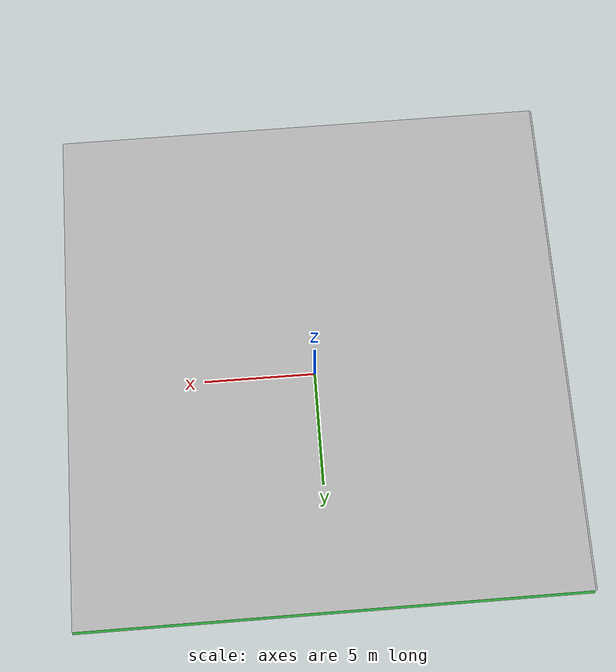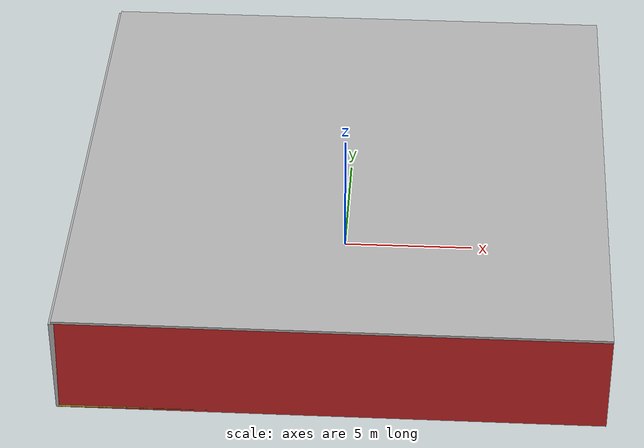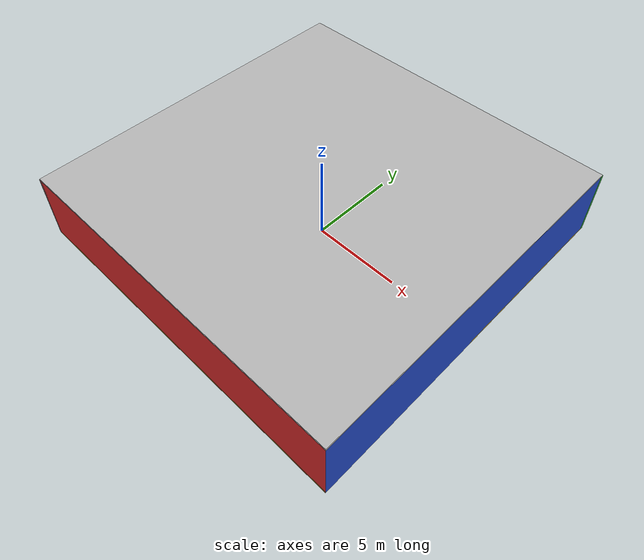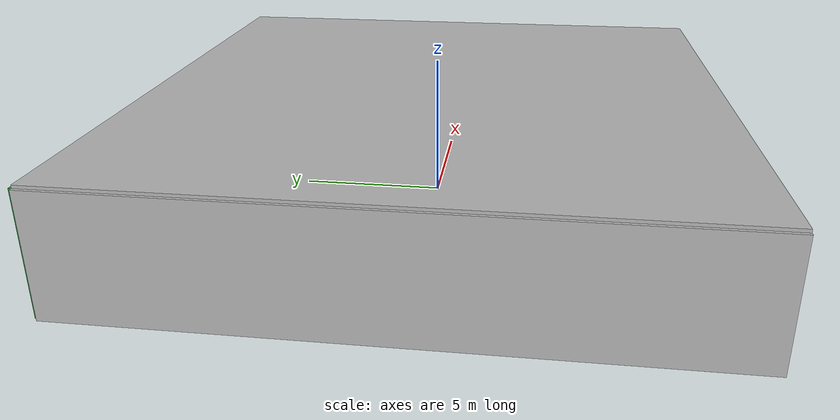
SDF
<sdf version="1.4">
 <world name="default">
  <physics type="ode">
   <max_step_size>0.001</max_step_size>
   <real_time_factor>1</real_time_factor>
   <real_time_update_rate>1000</real_time_update_rate>
   <gravity>0 0 -9.8</gravity>
  </physics>
  <scene><ambient>0.4 0.4 0.4 1</ambient><background>0.7 0.7 0.7 1</background><shadows>1</shadows></scene>
  <model name="Surrounding">
   <static>1</static>
   <link name="Ceiling">
    <collision name="Ceiling_Collision"><geometry><box><size>20 20 0.1</size></box></geometry></collision>
    <visual name="Ceiling_Visual">
     <geometry><box><size>20 20 0.1</size></box></geometry>
     <material>
      <script><uri>file://media/materials/scripts/gazebo.material</uri><name>Gazebo/PioneerBody</name></script>
     </material>
    </visual>
    <pose>0 0 4.05 0 0 0</pose>
   </link>
   <link name="Wall_South">
    <collision name="Wall_South_Collision">
     <geometry><box><size>20 0 4</size></box></geometry>
     <pose>0 0 2 0 -0 0</pose>
    </collision>
    <visual name="Wall_South_Visual">
     <pose>0 0 2 0 -0 0</pose>
     <geometry><box><size>20 0 4</size></box></geometry>
     <material>
      <script><uri>file://media/materials/scripts/gazebo.material</uri><name>Gazebo/Red</name></script>
     </material>
    </visual>
    <velocity_decay><linear>0</linear><angular>0</angular></velocity_decay>
    <pose>0 -10 0 0 -0 0</pose>
   </link>
   <link name="Wall_East">
    <collision name="Wall_21_Collision">
     <geometry><box><size>20 0 4</size></box></geometry>
     <pose>0 0 2 0 -0 0</pose>
    </collision>
    <visual name="Wall_21_Visual">
     <pose>0 0 2 0 -0 0</pose>
     <geometry><box><size>20 0 4</size></box></geometry>
     <material>
      <script><uri>file://media/materials/scripts/gazebo.material</uri><name>Gazebo/BlueLaser</name></script>
     </material>
    </visual>
    <velocity_decay><linear>0</linear><angular>0</angular></velocity_decay>
    <pose>10 0 0 0 -0 1.5708</pose>
   </link>
   <link name="Wall_North">
    <collision name="Wall_22_Collision">
     <geometry><box><size>20 0.2 4</size></box></geometry>
     <pose>0 0 2 0 -0 0</pose>
    </collision>
    <visual name="Wall_22_Visual">
     <pose>0 0 2 0 -0 0</pose>
     <geometry><box><size>20 0.2 4</size></box></geometry>
     <material>
      <script><uri>file://media/materials/scripts/gazebo.material</uri><name>Gazebo/Green</name></script>
     </material>
    </visual>
    <velocity_decay><linear>0</linear><angular>0</angular></velocity_decay>
    <pose>0 10 0 0 -0 0</pose>
   </link>
   <link name="Wall_West">
    <collision name="Wall_23_Collision">
     <geometry><box><size>20 0.2 4</size></box></geometry>
     <pose>0 0 2 0 -0 0</pose>
    </collision>
    <visual name="Wall_23_Visual">
     <pose>0 0 2 0 -0 0</pose>
     <geometry><box><size>20 0.2 4</size></box></geometry>
     <material>
      <script><uri>file://media/materials/scripts/gazebo.material</uri><name>Gazebo/CloudySky</name></script>
     </material>
    </visual>
    <velocity_decay><linear>0</linear><angular>0</angular></velocity_decay>
    <pose>-10 0 0 0 0 -1.5708</pose>
   </link>
   <link name="Ground_link">
    <collision name="collision">
     <pose>0 0 .05 0 -0 0</pose>
     <geometry><box><size>20 20 0.1</size></box></geometry>
    </collision>
    <visual name="visual">
     <pose>0 0 .05 0 -0 0</pose>
     <geometry><box><size>20 20 0.1</size></box></geometry>
     <material>
      <script><uri>file://media/materials/scripts/gazebo.material</uri><name>Gazebo/Gold</name></script>
     </material>
    </visual>
   </link>
   <static>1</static>
  </model>
  <spherical_coordinates>
   <surface_model>EARTH_WGS84</surface_model>
   <latitude_deg>0</latitude_deg>
   <longitude_deg>0</longitude_deg>
   <elevation>0</elevation>
   <heading_deg>0</heading_deg>
  </spherical_coordinates>
  <light name="lightball_0" type="diffuse">
   <diffuse>0.8 0.8 0.8 1</diffuse>
   <specular>0.2 0.2 0.2 1</specular>
   <attenuation>
    <range>100</range>
    <constant>0.7</constant>
    <linear>0.01</linear>
    <quadratic>0.001</quadratic>
   </attenuation>
   <direction>-0.5 0.1 -0.9</direction>
   <pose>6.14044798146 -5.32138481485 2.58914927999 0 0 0</pose>
  </light>
  <light name="lightball_1" type="diffuse">
   <diffuse>0.8 0.8 0.8 1</diffuse>
   <specular>0.2 0.2 0.2 1</specular>
   <attenuation>
    <range>100</range>
    <constant>0.7</constant>
    <linear>0.01</linear>
    <quadratic>0.001</quadratic>
   </attenuation>
   <direction>-0.5 0.1 -0.9</direction>
   <pose>9.59930366643 3.38211728457 0.663538620016 0 0 0</pose>
  </light>
  <light name="lightball_2" type="diffuse">
   <diffuse>0.8 0.8 0.8 1</diffuse>
   <specular>0.2 0.2 0.2 1</specular>
   <attenuation>
    <range>100</range>
    <constant>0.7</constant>
    <linear>0.01</linear>
    <quadratic>0.001</quadratic>
   </attenuation>
   <direction>-0.5 0.1 -0.9</direction>
   <pose>-6.84146586638 -1.29002254451 1.64113124877 0 0 0</pose>
  </light>
  <light name="lightball_3" type="diffuse">
   <diffuse>0.8 0.8 0.8 1</diffuse>
   <specular>0.2 0.2 0.2 1</specular>
   <attenuation>
    <range>100</range>
    <constant>0.7</constant>
    <linear>0.01</linear>
    <quadratic>0.001</quadratic>
   </attenuation>
   <direction>-0.5 0.1 -0.9</direction>
   <pose>-4.66690432296 -9.48357809587 3.47705098148 0 0 0</pose>
  </light>
  <include>
   <uri>model://construction_cone</uri>
   <pose>-6.70106344838 8.12117566658 0 0 0 2.1973615806</pose>
  </include>
  <include><uri>model://cabinet</uri><pose>-4.3060419262 -7.74046458121 0 0 0 0.00843790323065</pose></include>
  <include><uri>model://cabinet</uri><pose>5.04717690876 4.71301879206 0 0 0 0.997010327537</pose></include>
 </world>
</sdf>

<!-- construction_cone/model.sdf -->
<sdf version="1.5">
  <model name="Construction Cone">
    <link name="link">
      <collision name="collision">
        <geometry>
          <mesh>
            <scale>10 10 10</scale>
            <uri>file://isr-testbed/construction_cone/meshes/construction_cone.dae</uri>
          </mesh>
        </geometry>
      </collision>
      <visual name="visual">
        <geometry>
          <mesh>
            <scale>10 10 10</scale>
            <uri>file://isr-testbed/construction_cone/meshes/construction_cone.dae</uri>
          </mesh>
        </geometry>
      </visual>
    </link>
  </model>
</sdf>

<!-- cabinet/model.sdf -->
<sdf version="1.5">
  <model name="cabinet">
    <static>true</static>
    <link name="cabinet_bottom_plate">
      <inertial>
        <pose>0 0 -1 0 0 0</pose>
        <inertia>
          <ixx>2.050000</ixx>
          <ixy>0</ixy>
          <ixz>0</ixz>
          <iyy>2.050000</iyy>
          <iyz>0</iyz>
          <izz>2.050000</izz>
        </inertia>
        <mass>25.000000</mass>
      </inertial>
      <collision name="cabinet_bottom_plate_geom">
        <pose>0 0 0.010000 0 0 0</pose>
        <geometry>
          <box>
            <size>0.450000 0.450000 0.020000</size>
          </box>
        </geometry>
      </collision>
      <visual name="cabinet_bottom_plate_geom_visual">
        <pose>0 0 0.010000 0 0 0</pose>
        <geometry>
          <box>
            <size>0.450000 0.450000 0.020000</size>
          </box>
        </geometry>
        <material>
          <script>
            <uri>model://media/materials/scripts/gazebo.material</uri>
            <name>Gazebo/Wood</name>
          </script>
        </material>
      </visual>
      <collision name="cabinet_bottom_plate_geom_cabinet_back_plate">
        <pose>0.235000 0 0.510000 0 0 0</pose>
        <geometry>
          <box>
            <size>0.020000 0.450000 1.020000</size>
          </box>
        </geometry>
      </collision>
      <visual name="cabinet_bottom_plate_geom_cabinet_back_plate_visual">
        <pose>0.235000 0 0.510000 0 0 0</pose>
        <geometry>
          <box>
            <size>0.020000 0.450000 1.020000</size>
          </box>
        </geometry>
        <material>
          <script>
            <uri>model://media/materials/scripts/gazebo.material</uri>
            <name>Gazebo/Wood</name>
          </script>
        </material>
      </visual>
      <collision name="cabinet_bottom_plate_geom_cabinet_left_plate">
        <pose>0 0.235000 0.510000 0 0 0</pose>
        <geometry>
          <box>
            <size>0.450000 0.020000 1.020000</size>
          </box>
        </geometry>
      </collision>
      <visual name="cabinet_bottom_plate_geom_cabinet_left_plate_visual">
        <pose>0 0.235000 0.510000 0 0 0</pose>
        <geometry>
          <box>
            <size>0.450000 0.020000 1.020000</size>
          </box>
        </geometry>
        <material>
          <script>
            <uri>model://media/materials/scripts/gazebo.material</uri>
            <name>Gazebo/Wood</name>
          </script>
        </material>
      </visual>
      <collision name="cabinet_bottom_plate_geom_cabinet_middle_plate">
        <pose>0 0 0.510000 0 0 0</pose>
        <geometry>
          <box>
            <size>0.450000 0.450000 0.020000</size>
          </box>
        </geometry>
      </collision>
      <visual name="cabinet_bottom_plate_geom_cabinet_middle_plate_visual">
        <pose>0 0 0.510000 0 0 0</pose>
        <geometry>
          <box>
            <size>0.450000 0.450000 0.020000</size>
          </box>
        </geometry>
        <material>
          <script>
            <uri>model://media/materials/scripts/gazebo.material</uri>
            <name>Gazebo/Wood</name>
          </script>
        </material>
      </visual>
      <collision name="cabinet_bottom_plate_geom_cabinet_right_plate">
        <pose>0 -0.235000 0.510000 0 0 0</pose>
        <geometry>
          <box>
            <size>0.450000 0.020000 1.020000</size>
          </box>
        </geometry>
      </collision>
      <visual name="cabinet_bottom_plate_geom_cabinet_right_plate_visual">
        <pose>0 -0.235000 0.510000 0 0 0</pose>
        <geometry>
          <box>
            <size>0.450000 0.020000 1.020000</size>
          </box>
        </geometry>
        <material>
          <script>
            <uri>model://media/materials/scripts/gazebo.material</uri>
            <name>Gazebo/Wood</name>
          </script>
        </material>
      </visual>
      <collision name="cabinet_bottom_plate_geom_cabinet_top_plate">
        <pose>0 0 1.010000 0 0 0</pose>
        <geometry>
          <box>
            <size>0.450000 0.450000 0.020000</size>
          </box>
        </geometry>
      </collision>
      <visual name="cabinet_bottom_plate_geom_cabinet_top_plate_visual">
        <pose>0 0 1.010000 0 0 0</pose>
        <geometry>
          <box>
            <size>0.450000 0.450000 0.020000</size>
          </box>
        </geometry>
        <material>
          <script>
            <uri>model://media/materials/scripts/gazebo.material</uri>
            <name>Gazebo/Wood</name>
          </script>
        </material>
      </visual>
    </link>
  </model>
</sdf>
